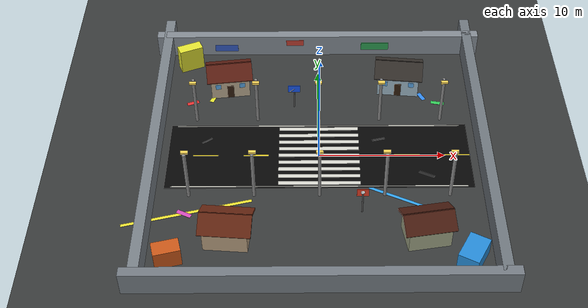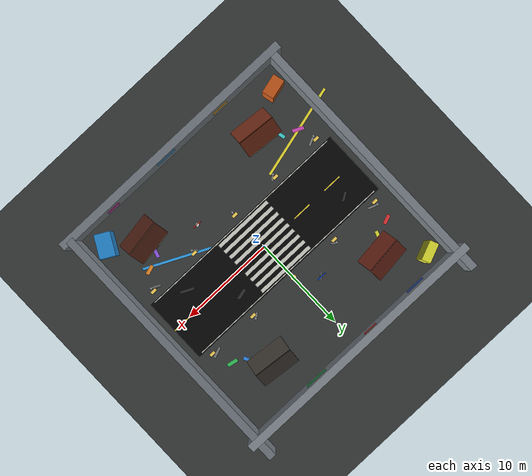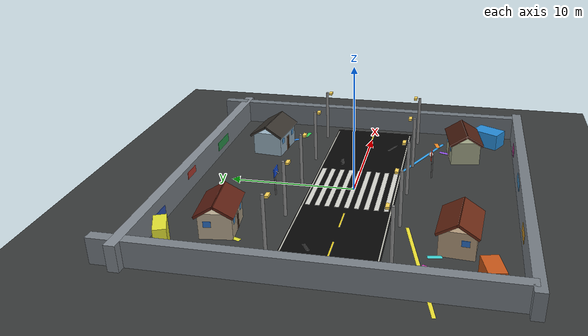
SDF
<sdf version="1.9">
 <world name="uav_gnc_lio_px4">
  <physics type="ode">
   <max_step_size>0.004</max_step_size>
   <real_time_factor>1.0</real_time_factor>
   <real_time_update_rate>250</real_time_update_rate>
  </physics>
  <plugin name="gz::sim::systems::Physics" filename="gz-sim-physics-system"/>
  <plugin name="gz::sim::systems::UserCommands" filename="gz-sim-user-commands-system"/>
  <plugin name="gz::sim::systems::SceneBroadcaster" filename="gz-sim-scene-broadcaster-system"/>
  <plugin name="gz::sim::systems::Contact" filename="gz-sim-contact-system"/>
  <plugin name="gz::sim::systems::Imu" filename="gz-sim-imu-system"/>
  <plugin name="gz::sim::systems::Magnetometer" filename="gz-sim-magnetometer-system"/>
  <plugin name="gz::sim::systems::AirPressure" filename="gz-sim-air-pressure-system"/>
  <plugin name="gz::sim::systems::NavSat" filename="gz-sim-navsat-system"/>
  <plugin name="gz::sim::systems::Sensors" filename="gz-sim-sensors-system">
   <render_engine>ogre2</render_engine>
  </plugin>
  <gravity>0 0 -9.8</gravity>
  <magnetic_field>6e-06 2.3e-05 -4.2e-05</magnetic_field>
  <atmosphere type="adiabatic"/>
  <spherical_coordinates>
   <surface_model>EARTH_WGS84</surface_model>
   <world_frame_orientation>ENU</world_frame_orientation>
   <latitude_deg>47.397971057728974</latitude_deg>
   <longitude_deg>8.546163739800146</longitude_deg>
   <elevation>0</elevation>
  </spherical_coordinates>
  <scene>
   <grid>false</grid>
   <ambient>0.45 0.45 0.45 1</ambient>
   <background>0.70 0.82 0.95 1</background>
   <shadows>true</shadows>
  </scene>
  <light name="sun" type="directional">
   <pose>0 0 80 0 0 0</pose>
   <intensity>1</intensity>
   <direction>-0.35 0.25 -0.90</direction>
   <diffuse>0.9 0.86 0.78 1</diffuse>
   <specular>0.25 0.25 0.25 1</specular>
  </light>
  <model name="asphalt_ground">
   <static>true</static>
   <link name="link">
    <collision name="collision"><geometry><box><size>90 90 0.05</size></box></geometry></collision>
    <visual name="visual">
     <geometry><box><size>90 90 0.05</size></box></geometry>
     <material><ambient>0.22 0.23 0.23 1</ambient><diffuse>0.22 0.23 0.23 1</diffuse></material>
    </visual>
   </link>
  </model>
  <model name="landing_markings">
   <static>true</static>
   <link name="link">
    <visual name="landing_h">
     <pose>0 0 0.04 0 0 0</pose>
     <geometry><box><size>3.0 0.22 0.01</size></box></geometry>
     <material><ambient>0.9 0.9 0.9 1</ambient><diffuse>0.9 0.9 0.9 1</diffuse></material>
    </visual>
    <visual name="landing_v">
     <pose>0 0 0.045 0 0 0</pose>
     <geometry><box><size>0.22 3.0 0.01</size></box></geometry>
     <material><ambient>0.9 0.9 0.9 1</ambient><diffuse>0.9 0.9 0.9 1</diffuse></material>
    </visual>
    <visual name="stripe_0">
     <pose>-10 -6 0.05 0 0 0.25</pose>
     <geometry><box><size>10 0.25 0.01</size></box></geometry>
     <material><ambient>0.95 0.9 0.2 1</ambient><diffuse>0.95 0.9 0.2 1</diffuse></material>
    </visual>
    <visual name="stripe_1">
     <pose>7 -5 0.055 0 0 -0.45</pose>
     <geometry><box><size>7 0.25 0.01</size></box></geometry>
     <material><ambient>0.2 0.65 0.95 1</ambient><diffuse>0.2 0.65 0.95 1</diffuse></material>
    </visual>
   </link>
  </model>
  <model name="feature_road">
   <static>true</static>
   <link name="link">
    <collision name="road_col">
     <pose>0 0 0.065 0 0 0</pose>
     <geometry><box><size>24.0 7.0 0.02</size></box></geometry>
    </collision>
    <visual name="road_vis">
     <pose>0 0 0.07 0 0 0</pose>
     <geometry><box><size>24.0 7.0 0.02</size></box></geometry>
     <material><ambient>0.025 0.025 0.025 1</ambient><diffuse>0.025 0.025 0.025 1</diffuse></material>
    </visual>
    <visual name="center_line_0">
     <pose>-9 0 0.09 0 0 0</pose>
     <geometry><box><size>2.0 0.12 0.01</size></box></geometry>
     <material><ambient>0.95 0.85 0.15 1</ambient><diffuse>0.95 0.85 0.15 1</diffuse></material>
    </visual>
    <visual name="center_line_1">
     <pose>-5 0 0.09 0 0 0</pose>
     <geometry><box><size>2.0 0.12 0.01</size></box></geometry>
     <material><ambient>0.95 0.85 0.15 1</ambient><diffuse>0.95 0.85 0.15 1</diffuse></material>
    </visual>
    <visual name="center_line_2">
     <pose>-1 0 0.09 0 0 0</pose>
     <geometry><box><size>2.0 0.12 0.01</size></box></geometry>
     <material><ambient>0.95 0.85 0.15 1</ambient><diffuse>0.95 0.85 0.15 1</diffuse></material>
    </visual>
    <visual name="center_line_3">
     <pose>3 0 0.09 0 0 0</pose>
     <geometry><box><size>2.0 0.12 0.01</size></box></geometry>
     <material><ambient>0.95 0.85 0.15 1</ambient><diffuse>0.95 0.85 0.15 1</diffuse></material>
    </visual>
    <visual name="center_line_4">
     <pose>7 0 0.09 0 0 0</pose>
     <geometry><box><size>2.0 0.12 0.01</size></box></geometry>
     <material><ambient>0.95 0.85 0.15 1</ambient><diffuse>0.95 0.85 0.15 1</diffuse></material>
    </visual>
    <visual name="center_line_5">
     <pose>11 0 0.09 0 0 0</pose>
     <geometry><box><size>2.0 0.12 0.01</size></box></geometry>
     <material><ambient>0.95 0.85 0.15 1</ambient><diffuse>0.95 0.85 0.15 1</diffuse></material>
    </visual>
    <visual name="lane_edge_n">
     <pose>0 3.35 0.092 0 0 0</pose>
     <geometry><box><size>23.0 0.08 0.01</size></box></geometry>
     <material><ambient>0.90 0.90 0.85 1</ambient><diffuse>0.90 0.90 0.85 1</diffuse></material>
    </visual>
    <visual name="lane_edge_s">
     <pose>0 -3.35 0.092 0 0 0</pose>
     <geometry><box><size>23.0 0.08 0.01</size></box></geometry>
     <material><ambient>0.90 0.90 0.85 1</ambient><diffuse>0.90 0.90 0.85 1</diffuse></material>
    </visual>
    <visual name="crosswalk_0">
     <pose>0 0.0 0.095 0 0 0</pose>
     <geometry><box><size>6.4 0.35 0.01</size></box></geometry>
     <material><ambient>0.85 0.85 0.82 1</ambient><diffuse>0.85 0.85 0.82 1</diffuse></material>
    </visual>
    <visual name="crosswalk_1">
     <pose>0 0.75 0.095 0 0 0</pose>
     <geometry><box><size>6.4 0.35 0.01</size></box></geometry>
     <material><ambient>0.85 0.85 0.82 1</ambient><diffuse>0.85 0.85 0.82 1</diffuse></material>
    </visual>
    <visual name="crosswalk_2">
     <pose>0 1.5 0.095 0 0 0</pose>
     <geometry><box><size>6.4 0.35 0.01</size></box></geometry>
     <material><ambient>0.85 0.85 0.82 1</ambient><diffuse>0.85 0.85 0.82 1</diffuse></material>
    </visual>
    <visual name="crosswalk_3">
     <pose>0 2.25 0.095 0 0 0</pose>
     <geometry><box><size>6.4 0.35 0.01</size></box></geometry>
     <material><ambient>0.85 0.85 0.82 1</ambient><diffuse>0.85 0.85 0.82 1</diffuse></material>
    </visual>
    <visual name="crosswalk_4">
     <pose>0 3.0 0.095 0 0 0</pose>
     <geometry><box><size>6.4 0.35 0.01</size></box></geometry>
     <material><ambient>0.85 0.85 0.82 1</ambient><diffuse>0.85 0.85 0.82 1</diffuse></material>
    </visual>
    <visual name="crosswalk_5">
     <pose>0 -0.75 0.095 0 0 0</pose>
     <geometry><box><size>6.4 0.35 0.01</size></box></geometry>
     <material><ambient>0.85 0.85 0.82 1</ambient><diffuse>0.85 0.85 0.82 1</diffuse></material>
    </visual>
    <visual name="crosswalk_6">
     <pose>0 -1.5 0.095 0 0 0</pose>
     <geometry><box><size>6.4 0.35 0.01</size></box></geometry>
     <material><ambient>0.85 0.85 0.82 1</ambient><diffuse>0.85 0.85 0.82 1</diffuse></material>
    </visual>
    <visual name="crosswalk_7">
     <pose>0 -2.25 0.095 0 0 0</pose>
     <geometry><box><size>6.4 0.35 0.01</size></box></geometry>
     <material><ambient>0.85 0.85 0.82 1</ambient><diffuse>0.85 0.85 0.82 1</diffuse></material>
    </visual>
    <visual name="crosswalk_8">
     <pose>0 -3.0 0.095 0 0 0</pose>
     <geometry><box><size>6.4 0.35 0.01</size></box></geometry>
     <material><ambient>0.85 0.85 0.82 1</ambient><diffuse>0.85 0.85 0.82 1</diffuse></material>
    </visual>
    <visual name="road_patch_0">
     <pose>4.8 1.8 0.096 0 0 0.25</pose>
     <geometry><box><size>1.0 0.22 0.01</size></box></geometry>
     <material><ambient>0.18 0.18 0.18 1</ambient><diffuse>0.18 0.18 0.18 1</diffuse></material>
    </visual>
    <visual name="road_patch_1">
     <pose>8.4 -2.1 0.096 0 0 -0.45</pose>
     <geometry><box><size>1.3 0.18 0.01</size></box></geometry>
     <material><ambient>0.16 0.16 0.16 1</ambient><diffuse>0.16 0.16 0.16 1</diffuse></material>
    </visual>
    <visual name="road_patch_2">
     <pose>-9.0 1.7 0.096 0 0 0.6</pose>
     <geometry><box><size>0.9 0.16 0.01</size></box></geometry>
     <material><ambient>0.17 0.17 0.17 1</ambient><diffuse>0.17 0.17 0.17 1</diffuse></material>
    </visual>
   </link>
  </model>
  <model name="north_wall">
   <static>true</static>
   <pose>0 13 1.0 0 0 0</pose>
   <link name="link">
    <collision name="collision"><geometry><box><size>28 0.8 2.0</size></box></geometry></collision>
    <visual name="visual">
     <geometry><box><size>28 0.8 2.0</size></box></geometry>
     <material><ambient>0.52 0.55 0.58 1</ambient><diffuse>0.52 0.55 0.58 1</diffuse></material>
    </visual>
    <visual name="panel_0">
     <pose>-8 -0.41 -0.20 0 0 0</pose>
     <geometry><box><size>2.0 0.04 0.65</size></box></geometry>
     <material><ambient>0.20 0.35 0.75 1</ambient><diffuse>0.20 0.35 0.75 1</diffuse></material>
    </visual>
    <visual name="panel_1">
     <pose>-2 -0.41 0.35 0 0 0</pose>
     <geometry><box><size>1.5 0.04 0.55</size></box></geometry>
     <material><ambient>0.75 0.25 0.20 1</ambient><diffuse>0.75 0.25 0.20 1</diffuse></material>
    </visual>
    <visual name="panel_2">
     <pose>5 -0.41 -0.05 0 0 0</pose>
     <geometry><box><size>2.4 0.04 0.75</size></box></geometry>
     <material><ambient>0.18 0.62 0.32 1</ambient><diffuse>0.18 0.62 0.32 1</diffuse></material>
    </visual>
   </link>
  </model>
  <model name="east_wall">
   <static>true</static>
   <pose>13 1 1.0 0 0 1.5708</pose>
   <link name="link">
    <collision name="collision"><geometry><box><size>28 0.8 2.0</size></box></geometry></collision>
    <visual name="visual">
     <geometry><box><size>28 0.8 2.0</size></box></geometry>
     <material><ambient>0.44 0.47 0.50 1</ambient><diffuse>0.44 0.47 0.50 1</diffuse></material>
    </visual>
   </link>
  </model>
  <model name="south_wall">
   <static>true</static>
   <pose>0 -13 1.0 0 0 0</pose>
   <link name="link">
    <collision name="collision"><geometry><box><size>28 0.8 2.0</size></box></geometry></collision>
    <visual name="visual">
     <geometry><box><size>28 0.8 2.0</size></box></geometry>
     <material><ambient>0.46 0.49 0.52 1</ambient><diffuse>0.46 0.49 0.52 1</diffuse></material>
    </visual>
    <visual name="panel_0">
     <pose>-6 0.41 0.00 0 0 0</pose>
     <geometry><box><size>1.8 0.04 0.65</size></box></geometry>
     <material><ambient>0.75 0.55 0.15 1</ambient><diffuse>0.75 0.55 0.15 1</diffuse></material>
    </visual>
    <visual name="panel_1">
     <pose>1 0.41 0.35 0 0 0</pose>
     <geometry><box><size>2.2 0.04 0.55</size></box></geometry>
     <material><ambient>0.25 0.55 0.75 1</ambient><diffuse>0.25 0.55 0.75 1</diffuse></material>
    </visual>
    <visual name="panel_2">
     <pose>8 0.41 -0.10 0 0 0</pose>
     <geometry><box><size>1.4 0.04 0.75</size></box></geometry>
     <material><ambient>0.70 0.22 0.55 1</ambient><diffuse>0.70 0.22 0.55 1</diffuse></material>
    </visual>
   </link>
  </model>
  <model name="west_wall">
   <static>true</static>
   <pose>-13 1 1.0 0 0 1.5708</pose>
   <link name="link">
    <collision name="collision"><geometry><box><size>28 0.8 2.0</size></box></geometry></collision>
    <visual name="visual">
     <geometry><box><size>28 0.8 2.0</size></box></geometry>
     <material><ambient>0.48 0.51 0.54 1</ambient><diffuse>0.48 0.51 0.54 1</diffuse></material>
    </visual>
   </link>
  </model>
  <model name="feature_boxes">
   <static>true</static>
   <link name="link">
    <collision name="box_0_col">
     <pose>-11.0 -10.5 0.8 0 0 0.25</pose>
     <geometry><box><size>2.0 1.2 1.6</size></box></geometry>
    </collision>
    <visual name="box_0_vis">
     <pose>-11.0 -10.5 0.8 0 0 0.25</pose>
     <geometry><box><size>2.0 1.2 1.6</size></box></geometry>
     <material><ambient>0.8 0.35 0.1 1</ambient><diffuse>0.8 0.35 0.1 1</diffuse></material>
    </visual>
    <collision name="box_1_col">
     <pose>11.0 -10.5 0.7 0 0 -0.5</pose>
     <geometry><box><size>1.6 2.4 1.4</size></box></geometry>
    </collision>
    <visual name="box_1_vis">
     <pose>11.0 -10.5 0.7 0 0 -0.5</pose>
     <geometry><box><size>1.6 2.4 1.4</size></box></geometry>
     <material><ambient>0.15 0.55 0.85 1</ambient><diffuse>0.15 0.55 0.85 1</diffuse></material>
    </visual>
    <collision name="box_2_col">
     <pose>-11.0 11.0 1.1 0 0 0.4</pose>
     <geometry><box><size>2.0 0.9 2.2</size></box></geometry>
    </collision>
    <visual name="box_2_vis">
     <pose>-11.0 11.0 1.1 0 0 0.4</pose>
     <geometry><box><size>2.0 0.9 2.2</size></box></geometry>
     <material><ambient>0.9 0.9 0.2 1</ambient><diffuse>0.9 0.9 0.2 1</diffuse></material>
    </visual>
   </link>
  </model>
  <model name="roadside_house_0">
   <static>true</static>
   <pose>-7.5 8.2 0 0 0 0.12</pose>
   <link name="link">
    <collision name="body_col">
     <pose>0 0 1.0 0 0 0</pose>
     <geometry><box><size>3.2 2.4 2.0</size></box></geometry>
    </collision>
    <visual name="body_vis">
     <pose>0 0 1.0 0 0 0</pose>
     <geometry><box><size>3.2 2.4 2.0</size></box></geometry>
     <material><ambient>0.74 0.68 0.58 1</ambient><diffuse>0.74 0.68 0.58 1</diffuse></material>
    </visual>
    <visual name="roof_left_vis">
     <pose>0 -0.65 2.25 0.55 0 0</pose>
     <geometry><box><size>3.8 1.7 0.18</size></box></geometry>
     <material><ambient>0.38 0.13 0.08 1</ambient><diffuse>0.38 0.13 0.08 1</diffuse></material>
    </visual>
    <visual name="roof_right_vis">
     <pose>0 0.65 2.25 -0.55 0 0</pose>
     <geometry><box><size>3.8 1.7 0.18</size></box></geometry>
     <material><ambient>0.38 0.13 0.08 1</ambient><diffuse>0.38 0.13 0.08 1</diffuse></material>
    </visual>
    <visual name="door_vis">
     <pose>0 -1.21 0.65 0 0 0</pose>
     <geometry><box><size>0.55 0.03 1.25</size></box></geometry>
     <material><ambient>0.20 0.12 0.06 1</ambient><diffuse>0.20 0.12 0.06 1</diffuse></material>
    </visual>
    <visual name="window_l_vis">
     <pose>-1.0 -1.22 1.25 0 0 0</pose>
     <geometry><box><size>0.45 0.02 0.45</size></box></geometry>
     <material><ambient>0.35 0.65 0.90 1</ambient><diffuse>0.35 0.65 0.90 1</diffuse></material>
    </visual>
    <visual name="window_r_vis">
     <pose>1.0 -1.22 1.25 0 0 0</pose>
     <geometry><box><size>0.45 0.02 0.45</size></box></geometry>
     <material><ambient>0.35 0.65 0.90 1</ambient><diffuse>0.35 0.65 0.90 1</diffuse></material>
    </visual>
    <visual name="side_window_vis">
     <pose>-1.61 0.55 1.2 0 0 0</pose>
     <geometry><box><size>0.03 0.55 0.45</size></box></geometry>
     <material><ambient>0.18 0.45 0.80 1</ambient><diffuse>0.18 0.45 0.80 1</diffuse></material>
    </visual>
    <visual name="house_number_vis">
     <pose>0.65 -1.225 1.75 0 0 0</pose>
     <geometry><box><size>0.42 0.02 0.22</size></box></geometry>
     <material><ambient>0.95 0.95 0.95 1</ambient><diffuse>0.95 0.95 0.95 1</diffuse></material>
    </visual>
   </link>
  </model>
  <model name="roadside_house_1">
   <static>true</static>
   <pose>6.8 8.4 0 0 0 -0.10</pose>
   <link name="link">
    <collision name="body_col">
     <pose>0 0 1.0 0 0 0</pose>
     <geometry><box><size>3.4 2.5 2.0</size></box></geometry>
    </collision>
    <visual name="body_vis">
     <pose>0 0 1.0 0 0 0</pose>
     <geometry><box><size>3.4 2.5 2.0</size></box></geometry>
     <material><ambient>0.62 0.72 0.78 1</ambient><diffuse>0.62 0.72 0.78 1</diffuse></material>
    </visual>
    <visual name="roof_left_vis">
     <pose>0 -0.68 2.25 0.55 0 0</pose>
     <geometry><box><size>4.0 1.75 0.18</size></box></geometry>
     <material><ambient>0.22 0.20 0.18 1</ambient><diffuse>0.22 0.20 0.18 1</diffuse></material>
    </visual>
    <visual name="roof_right_vis">
     <pose>0 0.68 2.25 -0.55 0 0</pose>
     <geometry><box><size>4.0 1.75 0.18</size></box></geometry>
     <material><ambient>0.22 0.20 0.18 1</ambient><diffuse>0.22 0.20 0.18 1</diffuse></material>
    </visual>
    <visual name="door_vis">
     <pose>0 -1.26 0.65 0 0 0</pose>
     <geometry><box><size>0.55 0.03 1.25</size></box></geometry>
     <material><ambient>0.20 0.12 0.06 1</ambient><diffuse>0.20 0.12 0.06 1</diffuse></material>
    </visual>
    <visual name="window_l_vis">
     <pose>-1.1 -1.27 1.25 0 0 0</pose>
     <geometry><box><size>0.45 0.02 0.45</size></box></geometry>
     <material><ambient>0.35 0.65 0.90 1</ambient><diffuse>0.35 0.65 0.90 1</diffuse></material>
    </visual>
    <visual name="window_r_vis">
     <pose>1.1 -1.27 1.25 0 0 0</pose>
     <geometry><box><size>0.45 0.02 0.45</size></box></geometry>
     <material><ambient>0.35 0.65 0.90 1</ambient><diffuse>0.35 0.65 0.90 1</diffuse></material>
    </visual>
    <visual name="side_window_vis">
     <pose>1.71 0.45 1.25 0 0 0</pose>
     <geometry><box><size>0.03 0.55 0.45</size></box></geometry>
     <material><ambient>0.18 0.45 0.80 1</ambient><diffuse>0.18 0.45 0.80 1</diffuse></material>
    </visual>
    <visual name="house_number_vis">
     <pose>-0.65 -1.275 1.75 0 0 0</pose>
     <geometry><box><size>0.42 0.02 0.22</size></box></geometry>
     <material><ambient>0.95 0.95 0.95 1</ambient><diffuse>0.95 0.95 0.95 1</diffuse></material>
    </visual>
   </link>
  </model>
  <model name="roadside_house_2">
   <static>true</static>
   <pose>-6.8 -8.4 0 0 0 -0.08</pose>
   <link name="link">
    <collision name="body_col">
     <pose>0 0 1.0 0 0 0</pose>
     <geometry><box><size>3.3 2.5 2.0</size></box></geometry>
    </collision>
    <visual name="body_vis">
     <pose>0 0 1.0 0 0 0</pose>
     <geometry><box><size>3.3 2.5 2.0</size></box></geometry>
     <material><ambient>0.72 0.62 0.50 1</ambient><diffuse>0.72 0.62 0.50 1</diffuse></material>
    </visual>
    <visual name="roof_left_vis">
     <pose>0 -0.68 2.25 0.55 0 0</pose>
     <geometry><box><size>3.9 1.75 0.18</size></box></geometry>
     <material><ambient>0.42 0.16 0.08 1</ambient><diffuse>0.42 0.16 0.08 1</diffuse></material>
    </visual>
    <visual name="roof_right_vis">
     <pose>0 0.68 2.25 -0.55 0 0</pose>
     <geometry><box><size>3.9 1.75 0.18</size></box></geometry>
     <material><ambient>0.42 0.16 0.08 1</ambient><diffuse>0.42 0.16 0.08 1</diffuse></material>
    </visual>
    <visual name="door_vis">
     <pose>0 1.26 0.65 0 0 0</pose>
     <geometry><box><size>0.55 0.03 1.25</size></box></geometry>
     <material><ambient>0.20 0.12 0.06 1</ambient><diffuse>0.20 0.12 0.06 1</diffuse></material>
    </visual>
    <visual name="window_l_vis">
     <pose>-1.0 1.27 1.25 0 0 0</pose>
     <geometry><box><size>0.45 0.02 0.45</size></box></geometry>
     <material><ambient>0.35 0.65 0.90 1</ambient><diffuse>0.35 0.65 0.90 1</diffuse></material>
    </visual>
    <visual name="window_r_vis">
     <pose>1.0 1.27 1.25 0 0 0</pose>
     <geometry><box><size>0.45 0.02 0.45</size></box></geometry>
     <material><ambient>0.35 0.65 0.90 1</ambient><diffuse>0.35 0.65 0.90 1</diffuse></material>
    </visual>
    <visual name="side_window_vis">
     <pose>-1.66 -0.55 1.25 0 0 0</pose>
     <geometry><box><size>0.03 0.55 0.45</size></box></geometry>
     <material><ambient>0.18 0.45 0.80 1</ambient><diffuse>0.18 0.45 0.80 1</diffuse></material>
    </visual>
    <visual name="house_number_vis">
     <pose>0.65 1.275 1.75 0 0 0</pose>
     <geometry><box><size>0.42 0.02 0.22</size></box></geometry>
     <material><ambient>0.95 0.95 0.95 1</ambient><diffuse>0.95 0.95 0.95 1</diffuse></material>
    </visual>
   </link>
  </model>
  <model name="roadside_house_3">
   <static>true</static>
   <pose>7.8 -8.3 0 0 0 0.16</pose>
   <link name="link">
    <collision name="body_col">
     <pose>0 0 1.0 0 0 0</pose>
     <geometry><box><size>3.2 2.4 2.0</size></box></geometry>
    </collision>
    <visual name="body_vis">
     <pose>0 0 1.0 0 0 0</pose>
     <geometry><box><size>3.2 2.4 2.0</size></box></geometry>
     <material><ambient>0.64 0.66 0.54 1</ambient><diffuse>0.64 0.66 0.54 1</diffuse></material>
    </visual>
    <visual name="roof_left_vis">
     <pose>0 -0.65 2.25 0.55 0 0</pose>
     <geometry><box><size>3.8 1.7 0.18</size></box></geometry>
     <material><ambient>0.30 0.12 0.07 1</ambient><diffuse>0.30 0.12 0.07 1</diffuse></material>
    </visual>
    <visual name="roof_right_vis">
     <pose>0 0.65 2.25 -0.55 0 0</pose>
     <geometry><box><size>3.8 1.7 0.18</size></box></geometry>
     <material><ambient>0.30 0.12 0.07 1</ambient><diffuse>0.30 0.12 0.07 1</diffuse></material>
    </visual>
    <visual name="door_vis">
     <pose>0 1.21 0.65 0 0 0</pose>
     <geometry><box><size>0.55 0.03 1.25</size></box></geometry>
     <material><ambient>0.20 0.12 0.06 1</ambient><diffuse>0.20 0.12 0.06 1</diffuse></material>
    </visual>
    <visual name="window_l_vis">
     <pose>-1.0 1.22 1.25 0 0 0</pose>
     <geometry><box><size>0.45 0.02 0.45</size></box></geometry>
     <material><ambient>0.35 0.65 0.90 1</ambient><diffuse>0.35 0.65 0.90 1</diffuse></material>
    </visual>
    <visual name="window_r_vis">
     <pose>1.0 1.22 1.25 0 0 0</pose>
     <geometry><box><size>0.45 0.02 0.45</size></box></geometry>
     <material><ambient>0.35 0.65 0.90 1</ambient><diffuse>0.35 0.65 0.90 1</diffuse></material>
    </visual>
    <visual name="side_window_vis">
     <pose>1.61 -0.55 1.2 0 0 0</pose>
     <geometry><box><size>0.03 0.55 0.45</size></box></geometry>
     <material><ambient>0.18 0.45 0.80 1</ambient><diffuse>0.18 0.45 0.80 1</diffuse></material>
    </visual>
    <visual name="house_number_vis">
     <pose>-0.65 1.225 1.75 0 0 0</pose>
     <geometry><box><size>0.42 0.02 0.22</size></box></geometry>
     <material><ambient>0.95 0.95 0.95 1</ambient><diffuse>0.95 0.95 0.95 1</diffuse></material>
    </visual>
   </link>
  </model>
  <model name="vio_ground_markers">
   <static>true</static>
   <link name="link">
    <visual name="marker_0">
     <pose>-10.5 6.2 0.085 0 0 0.35</pose>
     <geometry><box><size>1.0 0.35 0.01</size></box></geometry>
     <material><ambient>0.90 0.20 0.20 1</ambient><diffuse>0.90 0.20 0.20 1</diffuse></material>
    </visual>
    <visual name="marker_1">
     <pose>-8.8 6.8 0.086 0 0 -0.35</pose>
     <geometry><box><size>0.35 1.0 0.01</size></box></geometry>
     <material><ambient>0.90 0.90 0.20 1</ambient><diffuse>0.90 0.90 0.20 1</diffuse></material>
    </visual>
    <visual name="marker_2">
     <pose>10.0 6.1 0.085 0 0 -0.2</pose>
     <geometry><box><size>1.1 0.35 0.01</size></box></geometry>
     <material><ambient>0.20 0.80 0.35 1</ambient><diffuse>0.20 0.80 0.35 1</diffuse></material>
    </visual>
    <visual name="marker_3">
     <pose>8.7 6.9 0.086 0 0 0.45</pose>
     <geometry><box><size>0.35 0.9 0.01</size></box></geometry>
     <material><ambient>0.20 0.55 0.95 1</ambient><diffuse>0.20 0.55 0.95 1</diffuse></material>
    </visual>
    <visual name="marker_4">
     <pose>-10.2 -6.1 0.085 0 0 -0.45</pose>
     <geometry><box><size>1.2 0.35 0.01</size></box></geometry>
     <material><ambient>0.85 0.30 0.75 1</ambient><diffuse>0.85 0.30 0.75 1</diffuse></material>
    </visual>
    <visual name="marker_5">
     <pose>-8.6 -6.9 0.086 0 0 0.2</pose>
     <geometry><box><size>0.35 1.0 0.01</size></box></geometry>
     <material><ambient>0.25 0.85 0.85 1</ambient><diffuse>0.25 0.85 0.85 1</diffuse></material>
    </visual>
    <visual name="marker_6">
     <pose>9.7 -6.0 0.085 0 0 0.3</pose>
     <geometry><box><size>1.0 0.35 0.01</size></box></geometry>
     <material><ambient>0.95 0.55 0.15 1</ambient><diffuse>0.95 0.55 0.15 1</diffuse></material>
    </visual>
    <visual name="marker_7">
     <pose>8.1 -6.8 0.086 0 0 -0.3</pose>
     <geometry><box><size>0.35 1.0 0.01</size></box></geometry>
     <material><ambient>0.60 0.35 0.95 1</ambient><diffuse>0.60 0.35 0.95 1</diffuse></material>
    </visual>
   </link>
  </model>
  <model name="vio_sign_boards">
   <static>true</static>
   <link name="link">
    <collision name="sign_0_post_col">
     <pose>-2.0 5.8 1.0 0 0 0</pose>
     <geometry><cylinder><radius>0.06</radius><length>2.0</length></cylinder></geometry>
    </collision>
    <visual name="sign_0_post_vis">
     <pose>-2.0 5.8 1.0 0 0 0</pose>
     <geometry><cylinder><radius>0.06</radius><length>2.0</length></cylinder></geometry>
     <material><ambient>0.35 0.35 0.35 1</ambient><diffuse>0.35 0.35 0.35 1</diffuse></material>
    </visual>
    <visual name="sign_0_board_vis">
     <pose>-2.0 5.72 2.05 0 0 0</pose>
     <geometry><box><size>1.0 0.06 0.65</size></box></geometry>
     <material><ambient>0.10 0.35 0.95 1</ambient><diffuse>0.10 0.35 0.95 1</diffuse></material>
    </visual>
    <visual name="sign_0_bar_vis">
     <pose>-2.0 5.68 2.05 0 0 0.785</pose>
     <geometry><box><size>0.85 0.04 0.05</size></box></geometry>
     <material><ambient>0.95 0.95 0.95 1</ambient><diffuse>0.95 0.95 0.95 1</diffuse></material>
    </visual>
    <collision name="sign_1_post_col">
     <pose>3.2 -5.9 1.0 0 0 0</pose>
     <geometry><cylinder><radius>0.06</radius><length>2.0</length></cylinder></geometry>
    </collision>
    <visual name="sign_1_post_vis">
     <pose>3.2 -5.9 1.0 0 0 0</pose>
     <geometry><cylinder><radius>0.06</radius><length>2.0</length></cylinder></geometry>
     <material><ambient>0.35 0.35 0.35 1</ambient><diffuse>0.35 0.35 0.35 1</diffuse></material>
    </visual>
    <visual name="sign_1_board_vis">
     <pose>3.2 -5.82 2.05 0 0 0</pose>
     <geometry><box><size>0.9 0.06 0.7</size></box></geometry>
     <material><ambient>0.90 0.25 0.15 1</ambient><diffuse>0.90 0.25 0.15 1</diffuse></material>
    </visual>
    <visual name="sign_1_dot_vis">
     <pose>3.2 -5.78 2.1 0 0 0</pose>
     <geometry><sphere><radius>0.18</radius></sphere></geometry>
     <material><ambient>0.95 0.95 0.95 1</ambient><diffuse>0.95 0.95 0.95 1</diffuse></material>
    </visual>
   </link>
  </model>
  <model name="feature_poles">
   <static>true</static>
   <link name="link">
    <collision name="pole_n0_col">
     <pose>-10 4.2 2.2 0 0 0</pose>
     <geometry><cylinder><radius>0.12</radius><length>4.4</length></cylinder></geometry>
    </collision>
    <visual name="pole_n0_vis">
     <pose>-10 4.2 2.2 0 0 0</pose>
     <geometry><cylinder><radius>0.12</radius><length>4.4</length></cylinder></geometry>
     <material><ambient>0.55 0.55 0.55 1</ambient><diffuse>0.55 0.55 0.55 1</diffuse></material>
    </visual>
    <visual name="lamp_n0_vis">
     <pose>-10 3.85 4.35 0 0 0</pose>
     <geometry><box><size>0.55 0.25 0.18</size></box></geometry>
     <material><ambient>1.0 0.85 0.35 1</ambient><diffuse>1.0 0.85 0.35 1</diffuse></material>
    </visual>
    <collision name="pole_n1_col">
     <pose>-5 4.2 2.2 0 0 0</pose>
     <geometry><cylinder><radius>0.12</radius><length>4.4</length></cylinder></geometry>
    </collision>
    <visual name="pole_n1_vis">
     <pose>-5 4.2 2.2 0 0 0</pose>
     <geometry><cylinder><radius>0.12</radius><length>4.4</length></cylinder></geometry>
     <material><ambient>0.55 0.55 0.55 1</ambient><diffuse>0.55 0.55 0.55 1</diffuse></material>
    </visual>
    <visual name="lamp_n1_vis">
     <pose>-5 3.85 4.35 0 0 0</pose>
     <geometry><box><size>0.55 0.25 0.18</size></box></geometry>
     <material><ambient>1.0 0.85 0.35 1</ambient><diffuse>1.0 0.85 0.35 1</diffuse></material>
    </visual>
    <collision name="pole_n2_col">
     <pose>0 4.2 2.2 0 0 0</pose>
     <geometry><cylinder><radius>0.12</radius><length>4.4</length></cylinder></geometry>
    </collision>
    <visual name="pole_n2_vis">
     <pose>0 4.2 2.2 0 0 0</pose>
     <geometry><cylinder><radius>0.12</radius><length>4.4</length></cylinder></geometry>
     <material><ambient>0.55 0.55 0.55 1</ambient><diffuse>0.55 0.55 0.55 1</diffuse></material>
    </visual>
    <visual name="lamp_n2_vis">
     <pose>0 3.85 4.35 0 0 0</pose>
     <geometry><box><size>0.55 0.25 0.18</size></box></geometry>
     <material><ambient>1.0 0.85 0.35 1</ambient><diffuse>1.0 0.85 0.35 1</diffuse></material>
    </visual>
    <collision name="pole_n3_col">
     <pose>5 4.2 2.2 0 0 0</pose>
     <geometry><cylinder><radius>0.12</radius><length>4.4</length></cylinder></geometry>
    </collision>
    <visual name="pole_n3_vis">
     <pose>5 4.2 2.2 0 0 0</pose>
     <geometry><cylinder><radius>0.12</radius><length>4.4</length></cylinder></geometry>
     <material><ambient>0.55 0.55 0.55 1</ambient><diffuse>0.55 0.55 0.55 1</diffuse></material>
    </visual>
    <visual name="lamp_n3_vis">
     <pose>5 3.85 4.35 0 0 0</pose>
     <geometry><box><size>0.55 0.25 0.18</size></box></geometry>
     <material><ambient>1.0 0.85 0.35 1</ambient><diffuse>1.0 0.85 0.35 1</diffuse></material>
    </visual>
    <collision name="pole_n4_col">
     <pose>10 4.2 2.2 0 0 0</pose>
     <geometry><cylinder><radius>0.12</radius><length>4.4</length></cylinder></geometry>
    </collision>
    <visual name="pole_n4_vis">
     <pose>10 4.2 2.2 0 0 0</pose>
     <geometry><cylinder><radius>0.12</radius><length>4.4</length></cylinder></geometry>
     <material><ambient>0.55 0.55 0.55 1</ambient><diffuse>0.55 0.55 0.55 1</diffuse></material>
    </visual>
    <visual name="lamp_n4_vis">
     <pose>10 3.85 4.35 0 0 0</pose>
     <geometry><box><size>0.55 0.25 0.18</size></box></geometry>
     <material><ambient>1.0 0.85 0.35 1</ambient><diffuse>1.0 0.85 0.35 1</diffuse></material>
    </visual>
    <collision name="pole_s0_col">
     <pose>-10 -4.2 2.2 0 0 0</pose>
     <geometry><cylinder><radius>0.12</radius><length>4.4</length></cylinder></geometry>
    </collision>
    <visual name="pole_s0_vis">
     <pose>-10 -4.2 2.2 0 0 0</pose>
     <geometry><cylinder><radius>0.12</radius><length>4.4</length></cylinder></geometry>
     <material><ambient>0.55 0.55 0.55 1</ambient><diffuse>0.55 0.55 0.55 1</diffuse></material>
    </visual>
    <visual name="lamp_s0_vis">
     <pose>-10 -3.85 4.35 0 0 0</pose>
     <geometry><box><size>0.55 0.25 0.18</size></box></geometry>
     <material><ambient>1.0 0.85 0.35 1</ambient><diffuse>1.0 0.85 0.35 1</diffuse></material>
    </visual>
    <collision name="pole_s1_col">
     <pose>-5 -4.2 2.2 0 0 0</pose>
     <geometry><cylinder><radius>0.12</radius><length>4.4</length></cylinder></geometry>
    </collision>
    <visual name="pole_s1_vis">
     <pose>-5 -4.2 2.2 0 0 0</pose>
     <geometry><cylinder><radius>0.12</radius><length>4.4</length></cylinder></geometry>
     <material><ambient>0.55 0.55 0.55 1</ambient><diffuse>0.55 0.55 0.55 1</diffuse></material>
    </visual>
    <visual name="lamp_s1_vis">
     <pose>-5 -3.85 4.35 0 0 0</pose>
     <geometry><box><size>0.55 0.25 0.18</size></box></geometry>
     <material><ambient>1.0 0.85 0.35 1</ambient><diffuse>1.0 0.85 0.35 1</diffuse></material>
    </visual>
    <collision name="pole_s2_col">
     <pose>0 -4.2 2.2 0 0 0</pose>
     <geometry><cylinder><radius>0.12</radius><length>4.4</length></cylinder></geometry>
    </collision>
    <visual name="pole_s2_vis">
     <pose>0 -4.2 2.2 0 0 0</pose>
     <geometry><cylinder><radius>0.12</radius><length>4.4</length></cylinder></geometry>
     <material><ambient>0.55 0.55 0.55 1</ambient><diffuse>0.55 0.55 0.55 1</diffuse></material>
    </visual>
    <visual name="lamp_s2_vis">
     <pose>0 -3.85 4.35 0 0 0</pose>
     <geometry><box><size>0.55 0.25 0.18</size></box></geometry>
     <material><ambient>1.0 0.85 0.35 1</ambient><diffuse>1.0 0.85 0.35 1</diffuse></material>
    </visual>
    <collision name="pole_s3_col">
     <pose>5 -4.2 2.2 0 0 0</pose>
     <geometry><cylinder><radius>0.12</radius><length>4.4</length></cylinder></geometry>
    </collision>
    <visual name="pole_s3_vis">
     <pose>5 -4.2 2.2 0 0 0</pose>
     <geometry><cylinder><radius>0.12</radius><length>4.4</length></cylinder></geometry>
     <material><ambient>0.55 0.55 0.55 1</ambient><diffuse>0.55 0.55 0.55 1</diffuse></material>
    </visual>
    <visual name="lamp_s3_vis">
     <pose>5 -3.85 4.35 0 0 0</pose>
     <geometry><box><size>0.55 0.25 0.18</size></box></geometry>
     <material><ambient>1.0 0.85 0.35 1</ambient><diffuse>1.0 0.85 0.35 1</diffuse></material>
    </visual>
    <collision name="pole_s4_col">
     <pose>10 -4.2 2.2 0 0 0</pose>
     <geometry><cylinder><radius>0.12</radius><length>4.4</length></cylinder></geometry>
    </collision>
    <visual name="pole_s4_vis">
     <pose>10 -4.2 2.2 0 0 0</pose>
     <geometry><cylinder><radius>0.12</radius><length>4.4</length></cylinder></geometry>
     <material><ambient>0.55 0.55 0.55 1</ambient><diffuse>0.55 0.55 0.55 1</diffuse></material>
    </visual>
    <visual name="lamp_s4_vis">
     <pose>10 -3.85 4.35 0 0 0</pose>
     <geometry><box><size>0.55 0.25 0.18</size></box></geometry>
     <material><ambient>1.0 0.85 0.35 1</ambient><diffuse>1.0 0.85 0.35 1</diffuse></material>
    </visual>
   </link>
  </model>
 </world>
</sdf>
